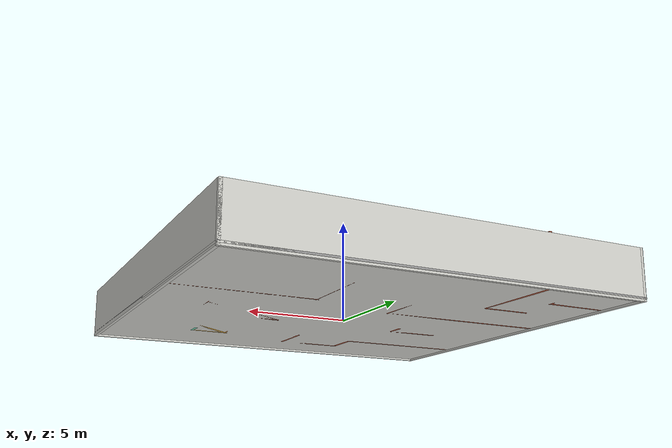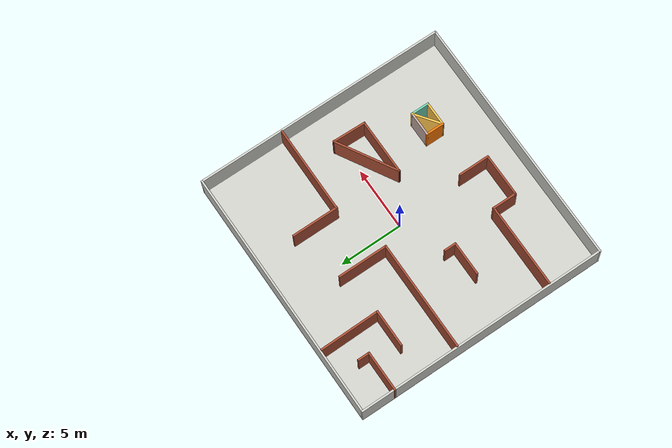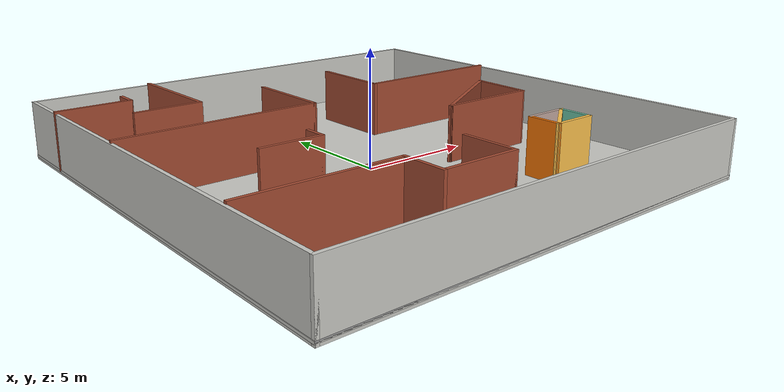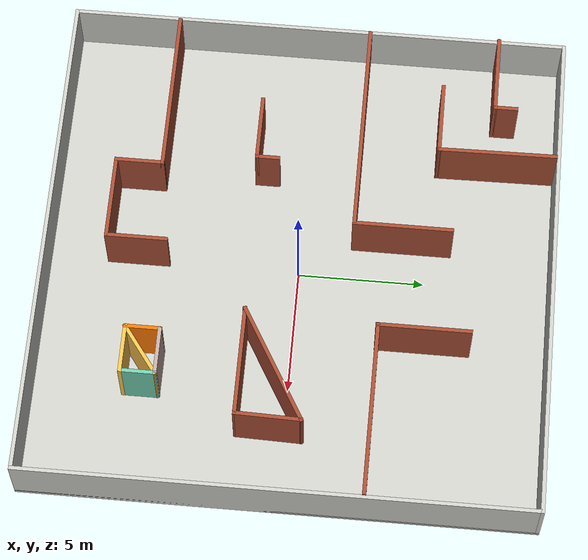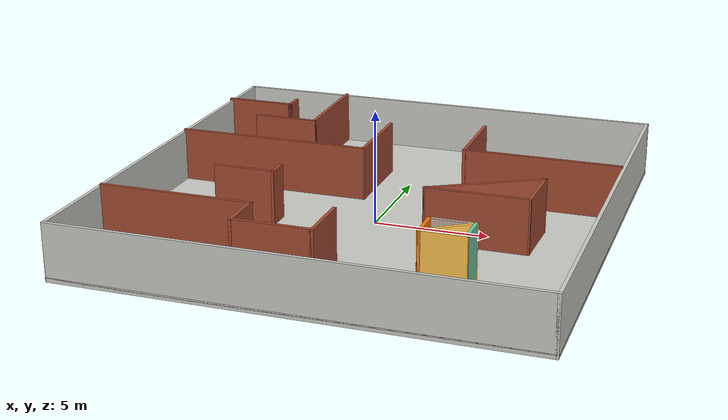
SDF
<?xml version='1.0'?>
<sdf version='1.7'>
  <model name='wall_room_1'>
    <pose>-0.01 0.005 0 0 -0 0</pose>
    <link name='Floor_1'>
      <collision name='Floor_1_Collision'>
        <geometry>
          <box>
            <size>20.17 20.14 0.1</size>
          </box>
        </geometry>
        <pose>0 0 0.05 0 -0 0</pose>
      </collision>
      <visual name='Floor_1_Visual'>
        <pose>0 0 0.05 0 -0 0</pose>
        <geometry>
          <box>
            <size>20.17 20.14 0.1</size>
          </box>
        </geometry>
        <material>
          <script>
            <uri>file://media/materials/scripts/gazebo.material</uri>
            <name>Gazebo/CeilingTiled</name>
          </script>
          <ambient>1 1 1 1</ambient>
        </material>
        <meta>
          <layer>1</layer>
        </meta>
      </visual>
      <pose>-0 -0 0.1 0 -0 0</pose>
    </link>
    <link name='Wall_1'>
      <collision name='Wall_1_Collision'>
        <geometry>
          <box>
            <size>20.15 0.15 2.5</size>
          </box>
        </geometry>
        <pose>0 0 1.25 0 -0 0</pose>
      </collision>
      <visual name='Wall_1_Visual'>
        <pose>0 0 1.25 0 -0 0</pose>
        <geometry>
          <box>
            <size>20.15 0.15 2.5</size>
          </box>
        </geometry>
        <material>
          <script>
            <uri>file://media/materials/scripts/gazebo.material</uri>
            <name>Gazebo/CeilingTiled</name>
          </script>
          <ambient>1 1 1 1</ambient>
        </material>
        <meta>
          <layer>0</layer>
        </meta>
      </visual>
      <pose>0.01 -9.995 0 0 -0 0</pose>
    </link>
    <link name='Wall_11'>
      <collision name='Wall_11_Collision'>
        <geometry>
          <box>
            <size>20.15 0.15 2.5</size>
          </box>
        </geometry>
        <pose>0 0 1.25 0 -0 0</pose>
      </collision>
      <visual name='Wall_11_Visual'>
        <pose>0 0 1.25 0 -0 0</pose>
        <geometry>
          <box>
            <size>20.15 0.15 2.5</size>
          </box>
        </geometry>
        <material>
          <script>
            <uri>file://media/materials/scripts/gazebo.material</uri>
            <name>Gazebo/CeilingTiled</name>
          </script>
          <ambient>1 1 1 1</ambient>
        </material>
        <meta>
          <layer>0</layer>
        </meta>
      </visual>
      <pose>0.01 9.995 0 0 -0 0</pose>
    </link>
    <link name='Wall_17'>
      <collision name='Wall_17_Collision'>
        <geometry>
          <box>
            <size>20.15 0.15 0.1</size>
          </box>
        </geometry>
        <pose>0 0 0.05 0 -0 0</pose>
      </collision>
      <visual name='Wall_17_Visual'>
        <pose>0 0 0.05 0 -0 0</pose>
        <geometry>
          <box>
            <size>20.15 0.15 0.1</size>
          </box>
        </geometry>
        <material>
          <script>
            <uri>file://media/materials/scripts/gazebo.material</uri>
            <name>Gazebo/Grey</name>
          </script>
          <ambient>1 1 1 1</ambient>
        </material>
        <meta>
          <layer>1</layer>
        </meta>
      </visual>
      <pose>0.01 -9.995 0.1 0 -0 0</pose>
    </link>
    <link name='Wall_18'>
      <collision name='Wall_18_Collision'>
        <geometry>
          <box>
            <size>20.14 0.15 0.1</size>
          </box>
        </geometry>
        <pose>0 0 0.05 0 -0 0</pose>
      </collision>
      <visual name='Wall_18_Visual'>
        <pose>0 0 0.05 0 -0 0</pose>
        <geometry>
          <box>
            <size>20.14 0.15 0.1</size>
          </box>
        </geometry>
        <material>
          <script>
            <uri>file://media/materials/scripts/gazebo.material</uri>
            <name>Gazebo/Grey</name>
          </script>
          <ambient>1 1 1 1</ambient>
        </material>
        <meta>
          <layer>1</layer>
        </meta>
      </visual>
      <pose>-9.99 -0 0.1 0 -0 1.5708</pose>
    </link>
    <link name='Wall_19'>
      <collision name='Wall_19_Collision'>
        <geometry>
          <box>
            <size>20.14 0.15 0.1</size>
          </box>
        </geometry>
        <pose>0 0 0.05 0 -0 0</pose>
      </collision>
      <visual name='Wall_19_Visual'>
        <pose>0 0 0.05 0 -0 0</pose>
        <geometry>
          <box>
            <size>20.14 0.15 0.1</size>
          </box>
        </geometry>
        <material>
          <script>
            <uri>file://media/materials/scripts/gazebo.material</uri>
            <name>Gazebo/Grey</name>
          </script>
          <ambient>1 1 1 1</ambient>
        </material>
        <meta>
          <layer>1</layer>
        </meta>
      </visual>
      <pose>10.01 -0 0.1 0 -0 1.5708</pose>
    </link>
    <link name='Wall_20'>
      <collision name='Wall_20_Collision'>
        <geometry>
          <box>
            <size>20.15 0.15 0.1</size>
          </box>
        </geometry>
        <pose>0 0 0.05 0 -0 0</pose>
      </collision>
      <visual name='Wall_20_Visual'>
        <pose>0 0 0.05 0 -0 0</pose>
        <geometry>
          <box>
            <size>20.15 0.15 0.1</size>
          </box>
        </geometry>
        <material>
          <script>
            <uri>file://media/materials/scripts/gazebo.material</uri>
            <name>Gazebo/Grey</name>
          </script>
          <ambient>1 1 1 1</ambient>
        </material>
        <meta>
          <layer>1</layer>
        </meta>
      </visual>
      <pose>0.01 9.995 0.1 0 -0 0</pose>
    </link>
    <link name='Wall_23'>
      <collision name='Wall_23_Collision'>
        <geometry>
          <box>
            <size>3.25 0.15 2.5</size>
          </box>
        </geometry>
        <pose>0 0 1.25 0 -0 0</pose>
      </collision>
      <visual name='Wall_23_Visual'>
        <pose>0 0 1.25 0 -0 0</pose>
        <geometry>
          <box>
            <size>3.25 0.15 2.5</size>
          </box>
        </geometry>
        <material>
          <script>
            <uri>file://media/materials/scripts/gazebo.material</uri>
            <name>Gazebo/Bricks</name>
          </script>
          <ambient>1 1 1 1</ambient>
        </material>
        <meta>
          <layer>1</layer>
        </meta>
      </visual>
      <pose>-8.46 7.345 0.1 0 -0 0</pose>
    </link>
    <link name='Wall_24'>
      <collision name='Wall_24_Collision'>
        <geometry>
          <box>
            <size>1 0.15 2.5</size>
          </box>
        </geometry>
        <pose>0 0 1.25 0 -0 0</pose>
      </collision>
      <visual name='Wall_24_Visual'>
        <pose>0 0 1.25 0 -0 0</pose>
        <geometry>
          <box>
            <size>1 0.15 2.5</size>
          </box>
        </geometry>
        <material>
          <script>
            <uri>file://media/materials/scripts/gazebo.material</uri>
            <name>Gazebo/Bricks</name>
          </script>
          <ambient>1 1 1 1</ambient>
        </material>
        <meta>
          <layer>1</layer>
        </meta>
      </visual>
      <pose>-6.91 7.77 0.1 0 -0 1.5708</pose>
    </link>
    <link name='Wall_27'>
      <collision name='Wall_27_Collision'>
        <geometry>
          <box>
            <size>4.76039 0.15 2.5</size>
          </box>
        </geometry>
        <pose>0 0 1.25 0 -0 0</pose>
      </collision>
      <visual name='Wall_27_Visual'>
        <pose>0 0 1.25 0 -0 0</pose>
        <geometry>
          <box>
            <size>4.76039 0.15 2.5</size>
          </box>
        </geometry>
        <material>
          <script>
            <uri>file://media/materials/scripts/gazebo.material</uri>
            <name>Gazebo/Bricks</name>
          </script>
          <ambient>1 1 1 1</ambient>
        </material>
        <meta>
          <layer>1</layer>
        </meta>
      </visual>
      <pose>-4.85 7.56 0.1 0 -0 -1.55778</pose>
    </link>
    <link name='Wall_28'>
      <collision name='Wall_28_Collision'>
        <geometry>
          <box>
            <size>3 0.15 2.5</size>
          </box>
        </geometry>
        <pose>0 0 1.25 0 -0 0</pose>
      </collision>
      <visual name='Wall_28_Visual'>
        <pose>0 0 1.25 0 -0 0</pose>
        <geometry>
          <box>
            <size>3 0.15 2.5</size>
          </box>
        </geometry>
        <material>
          <script>
            <uri>file://media/materials/scripts/gazebo.material</uri>
            <name>Gazebo/Bricks</name>
          </script>
          <ambient>1 1 1 1</ambient>
        </material>
        <meta>
          <layer>1</layer>
        </meta>
      </visual>
      <pose>-6.245 5.215 0.1 0 -0 3.14159</pose>
    </link>
    <link name='Wall_30'>
      <collision name='Wall_30_Collision'>
        <geometry>
          <box>
            <size>8.75 0.15 2.5</size>
          </box>
        </geometry>
        <pose>0 0 1.25 0 -0 0</pose>
      </collision>
      <visual name='Wall_30_Visual'>
        <pose>0 0 1.25 0 -0 0</pose>
        <geometry>
          <box>
            <size>8.75 0.15 2.5</size>
          </box>
        </geometry>
        <material>
          <script>
            <uri>file://media/materials/scripts/gazebo.material</uri>
            <name>Gazebo/Bricks</name>
          </script>
          <ambient>1 1 1 1</ambient>
        </material>
        <meta>
          <layer>1</layer>
        </meta>
      </visual>
      <pose>-5.63 2.085 0.1 0 -0 0</pose>
    </link>
    <link name='Wall_31'>
      <collision name='Wall_31_Collision'>
        <geometry>
          <box>
            <size>4 0.15 2.5</size>
          </box>
        </geometry>
        <pose>0 0 1.25 0 -0 0</pose>
      </collision>
      <visual name='Wall_31_Visual'>
        <pose>0 0 1.25 0 -0 0</pose>
        <geometry>
          <box>
            <size>4 0.15 2.5</size>
          </box>
        </geometry>
        <material>
          <script>
            <uri>file://media/materials/scripts/gazebo.material</uri>
            <name>Gazebo/Bricks</name>
          </script>
          <ambient>1 1 1 1</ambient>
        </material>
        <meta>
          <layer>1</layer>
        </meta>
      </visual>
      <pose>-1.27 4.01 0.1 0 -0 1.5708</pose>
    </link>
    <link name='Wall_33'>
      <collision name='Wall_33_Collision'>
        <geometry>
          <box>
            <size>7.02003 0.15 2.5</size>
          </box>
        </geometry>
        <pose>0 0 1.25 0 -0 0</pose>
      </collision>
      <visual name='Wall_33_Visual'>
        <pose>0 0 1.25 0 -0 0</pose>
        <geometry>
          <box>
            <size>7.02003 0.15 2.5</size>
          </box>
        </geometry>
        <material>
          <script>
            <uri>file://media/materials/scripts/gazebo.material</uri>
            <name>Gazebo/Bricks</name>
          </script>
          <ambient>1 1 1 1</ambient>
        </material>
        <meta>
          <layer>1</layer>
        </meta>
      </visual>
      <pose>6.445 3.325 0.1 0 -0 -0.002911</pose>
    </link>
    <link name='Wall_36'>
      <collision name='Wall_36_Collision'>
        <geometry>
          <box>
            <size>3.75 0.15 2.5</size>
          </box>
        </geometry>
        <pose>0 0 1.25 0 -0 0</pose>
      </collision>
      <visual name='Wall_36_Visual'>
        <pose>0 0 1.25 0 -0 0</pose>
        <geometry>
          <box>
            <size>3.75 0.15 2.5</size>
          </box>
        </geometry>
        <material>
          <script>
            <uri>file://media/materials/scripts/gazebo.material</uri>
            <name>Gazebo/Bricks</name>
          </script>
          <ambient>1 1 1 1</ambient>
        </material>
        <meta>
          <layer>1</layer>
        </meta>
      </visual>
      <pose>3 5.115 0.1 0 -0 1.5708</pose>
    </link>
    <link name='Wall_39'>
      <collision name='Wall_39_Collision'>
        <geometry>
          <box>
            <size>6.75 0.15 2.5</size>
          </box>
        </geometry>
        <pose>0 0 1.25 0 -0 0</pose>
      </collision>
      <visual name='Wall_39_Visual'>
        <pose>0 0 1.25 0 -0 0</pose>
        <geometry>
          <box>
            <size>6.75 0.15 2.5</size>
          </box>
        </geometry>
        <material>
          <script>
            <uri>file://media/materials/scripts/gazebo.material</uri>
            <name>Gazebo/Bricks</name>
          </script>
          <ambient>1 1 1 1</ambient>
        </material>
        <meta>
          <layer>1</layer>
        </meta>
      </visual>
      <pose>-6.57 -5.725 0.1 0 -0 0</pose>
    </link>
    <link name='Wall_40'>
      <collision name='Wall_40_Collision'>
        <geometry>
          <box>
            <size>2 0.15 2.5</size>
          </box>
        </geometry>
        <pose>0 0 1.25 0 -0 0</pose>
      </collision>
      <visual name='Wall_40_Visual'>
        <pose>0 0 1.25 0 -0 0</pose>
        <geometry>
          <box>
            <size>2 0.15 2.5</size>
          </box>
        </geometry>
        <material>
          <script>
            <uri>file://media/materials/scripts/gazebo.material</uri>
            <name>Gazebo/Bricks</name>
          </script>
          <ambient>1 1 1 1</ambient>
        </material>
        <meta>
          <layer>1</layer>
        </meta>
      </visual>
      <pose>-3.27 -6.65 0.1 0 -0 -1.5708</pose>
    </link>
    <link name='Wall_41'>
      <collision name='Wall_41_Collision'>
        <geometry>
          <box>
            <size>3.5 0.15 2.5</size>
          </box>
        </geometry>
        <pose>0 0 1.25 0 -0 0</pose>
      </collision>
      <visual name='Wall_41_Visual'>
        <pose>0 0 1.25 0 -0 0</pose>
        <geometry>
          <box>
            <size>3.5 0.15 2.5</size>
          </box>
        </geometry>
        <material>
          <script>
            <uri>file://media/materials/scripts/gazebo.material</uri>
            <name>Gazebo/Bricks</name>
          </script>
          <ambient>1 1 1 1</ambient>
        </material>
        <meta>
          <layer>1</layer>
        </meta>
      </visual>
      <pose>-1.595 -7.575 0.1 0 -0 0</pose>
    </link>
    <link name='Wall_42'>
      <collision name='Wall_42_Collision'>
        <geometry>
          <box>
            <size>2.5 0.15 2.5</size>
          </box>
        </geometry>
        <pose>0 0 1.25 0 -0 0</pose>
      </collision>
      <visual name='Wall_42_Visual'>
        <pose>0 0 1.25 0 -0 0</pose>
        <geometry>
          <box>
            <size>2.5 0.15 2.5</size>
          </box>
        </geometry>
        <material>
          <script>
            <uri>file://media/materials/scripts/gazebo.material</uri>
            <name>Gazebo/Bricks</name>
          </script>
          <ambient>1 1 1 1</ambient>
        </material>
        <meta>
          <layer>1</layer>
        </meta>
      </visual>
      <pose>0.08 -6.4 0.1 0 -0 1.5708</pose>
    </link>
    <link name='Wall_44'>
      <collision name='Wall_44_Collision'>
        <geometry>
          <box>
            <size>1.5 0.15 2.5</size>
          </box>
        </geometry>
        <pose>0 0 1.25 0 -0 0</pose>
      </collision>
      <visual name='Wall_44_Visual'>
        <pose>0 0 1.25 0 -0 0</pose>
        <geometry>
          <box>
            <size>1.5 0.15 2.5</size>
          </box>
        </geometry>
        <material>
          <script>
            <uri>file://media/materials/scripts/gazebo.material</uri>
            <name>Gazebo/Grey</name>
          </script>
          <ambient>0.996078 0.47451 0.0196078 1</ambient>
        </material>
        <meta>
          <layer>1</layer>
        </meta>
      </visual>
      <pose>3.9 -5.7 0.1 0 -0 1.5708</pose>
    </link>
    <link name='Wall_45'>
      <collision name='Wall_45_Collision'>
        <geometry>
          <box>
            <size>2 0.15 2.5</size>
          </box>
        </geometry>
        <pose>0 0 1.25 0 -0 0</pose>
      </collision>
      <visual name='Wall_45_Visual'>
        <pose>0 0 1.25 0 -0 0</pose>
        <geometry>
          <box>
            <size>2 0.15 2.5</size>
          </box>
        </geometry>
        <material>
          <script>
            <uri>file://media/materials/scripts/gazebo.material</uri>
            <name>Gazebo/Grey</name>
          </script>
          <ambient>0.760784 0.662745 0.627451 1</ambient>
        </material>
        <meta>
          <layer>1</layer>
        </meta>
      </visual>
      <pose>4.825 -5.025 0.1 0 -0 0</pose>
    </link>
    <link name='Wall_46'>
      <collision name='Wall_46_Collision'>
        <geometry>
          <box>
            <size>1.5 0.15 2.5</size>
          </box>
        </geometry>
        <pose>0 0 1.25 0 -0 0</pose>
      </collision>
      <visual name='Wall_46_Visual'>
        <pose>0 0 1.25 0 -0 0</pose>
        <geometry>
          <box>
            <size>1.5 0.15 2.5</size>
          </box>
        </geometry>
        <material>
          <script>
            <uri>file://media/materials/scripts/gazebo.material</uri>
            <name>Gazebo/Grey</name>
          </script>
          <ambient>0.435294 0.796078 0.67451 1</ambient>
        </material>
        <meta>
          <layer>1</layer>
        </meta>
      </visual>
      <pose>5.75 -5.7 0.1 0 -0 -1.5708</pose>
    </link>
    <link name='Wall_47'>
      <collision name='Wall_47_Collision'>
        <geometry>
          <box>
            <size>2 0.15 2.5</size>
          </box>
        </geometry>
        <pose>0 0 1.25 0 -0 0</pose>
      </collision>
      <visual name='Wall_47_Visual'>
        <pose>0 0 1.25 0 -0 0</pose>
        <geometry>
          <box>
            <size>2 0.15 2.5</size>
          </box>
        </geometry>
        <material>
          <script>
            <uri>file://media/materials/scripts/gazebo.material</uri>
            <name>Gazebo/Grey</name>
          </script>
          <ambient>1 0.764706 0.305882 1</ambient>
        </material>
        <meta>
          <layer>1</layer>
        </meta>
      </visual>
      <pose>4.825 -6.375 0.1 0 -0 3.14159</pose>
    </link>
    <link name='Wall_48'>
      <collision name='Wall_48_Collision'>
        <geometry>
          <box>
            <size>2.4402 0.15 2.5</size>
          </box>
        </geometry>
        <pose>0 0 1.25 0 -0 0</pose>
      </collision>
      <visual name='Wall_48_Visual'>
        <pose>0 0 1.25 0 -0 0</pose>
        <geometry>
          <box>
            <size>2.4402 0.15 2.5</size>
          </box>
        </geometry>
        <material>
          <script>
            <uri>file://media/materials/scripts/gazebo.material</uri>
            <name>Gazebo/Grey</name>
          </script>
          <ambient>1 0.764706 0.305882 1</ambient>
        </material>
        <meta>
          <layer>1</layer>
        </meta>
      </visual>
      <pose>4.825 -5.7 0.1 0 -0 0.630401</pose>
    </link>
    <link name='Wall_53'>
      <collision name='Wall_53_Collision'>
        <geometry>
          <box>
            <size>2.75 0.15 2.5</size>
          </box>
        </geometry>
        <pose>0 0 1.25 0 -0 0</pose>
      </collision>
      <visual name='Wall_53_Visual'>
        <pose>0 0 1.25 0 -0 0</pose>
        <geometry>
          <box>
            <size>2.75 0.15 2.5</size>
          </box>
        </geometry>
        <material>
          <script>
            <uri>file://media/materials/scripts/gazebo.material</uri>
            <name>Gazebo/Bricks</name>
          </script>
          <ambient>1 1 1 1</ambient>
        </material>
        <meta>
          <layer>1</layer>
        </meta>
      </visual>
      <pose>-5.17 -2.005 0.1 0 -0 0</pose>
    </link>
    <link name='Wall_54'>
      <collision name='Wall_54_Collision'>
        <geometry>
          <box>
            <size>1 0.15 2.5</size>
          </box>
        </geometry>
        <pose>0 0 1.25 0 -0 0</pose>
      </collision>
      <visual name='Wall_54_Visual'>
        <pose>0 0 1.25 0 -0 0</pose>
        <geometry>
          <box>
            <size>1 0.15 2.5</size>
          </box>
        </geometry>
        <material>
          <script>
            <uri>file://media/materials/scripts/gazebo.material</uri>
            <name>Gazebo/Bricks</name>
          </script>
          <ambient>1 1 1 1</ambient>
        </material>
        <meta>
          <layer>1</layer>
        </meta>
      </visual>
      <pose>-3.87 -1.58 0.1 0 -0 1.5708</pose>
    </link>
    <link name='Wall_57'>
      <collision name='Wall_57_Collision'>
        <geometry>
          <box>
            <size>5.25 0.15 2.5</size>
          </box>
        </geometry>
        <pose>0 0 1.25 0 -0 0</pose>
      </collision>
      <visual name='Wall_57_Visual'>
        <pose>0 0 1.25 0 -0 0</pose>
        <geometry>
          <box>
            <size>5.25 0.15 2.5</size>
          </box>
        </geometry>
        <material>
          <script>
            <uri>file://media/materials/scripts/gazebo.material</uri>
            <name>Gazebo/Bricks</name>
          </script>
          <ambient>1 1 1 1</ambient>
        </material>
        <meta>
          <layer>1</layer>
        </meta>
      </visual>
      <pose>4.97164 -0.56 0.1 0 -0 -2.61799</pose>
    </link>
    <link name='Wall_58'>
      <collision name='Wall_58_Collision'>
        <geometry>
          <box>
            <size>4.5 0.15 2.5</size>
          </box>
        </geometry>
        <pose>0 0 1.25 0 -0 0</pose>
      </collision>
      <visual name='Wall_58_Visual'>
        <pose>0 0 1.25 0 -0 0</pose>
        <geometry>
          <box>
            <size>4.5 0.15 2.5</size>
          </box>
        </geometry>
        <material>
          <script>
            <uri>file://media/materials/scripts/gazebo.material</uri>
            <name>Gazebo/Bricks</name>
          </script>
          <ambient>1 1 1 1</ambient>
        </material>
        <meta>
          <layer>1</layer>
        </meta>
      </visual>
      <pose>4.93827 -1.835 0.1 0 -0 0</pose>
    </link>
    <link name='Wall_59'>
      <collision name='Wall_59_Collision'>
        <geometry>
          <box>
            <size>2.70087 0.15 2.5</size>
          </box>
        </geometry>
        <pose>0 0 1.25 0 -0 0</pose>
      </collision>
      <visual name='Wall_59_Visual'>
        <pose>0 0 1.25 0 -0 0</pose>
        <geometry>
          <box>
            <size>2.70087 0.15 2.5</size>
          </box>
        </geometry>
        <material>
          <script>
            <uri>file://media/materials/scripts/gazebo.material</uri>
            <name>Gazebo/Bricks</name>
          </script>
          <ambient>1 1 1 1</ambient>
        </material>
        <meta>
          <layer>1</layer>
        </meta>
      </visual>
      <pose>7.14663 -0.56 0.1 0 -0 1.54463</pose>
    </link>
    <link name='Wall_7'>
      <collision name='Wall_7_Collision'>
        <geometry>
          <box>
            <size>20.14 0.15 2.5</size>
          </box>
        </geometry>
        <pose>0 0 1.25 0 -0 0</pose>
      </collision>
      <visual name='Wall_7_Visual'>
        <pose>0 0 1.25 0 -0 0</pose>
        <geometry>
          <box>
            <size>20.14 0.15 2.5</size>
          </box>
        </geometry>
        <material>
          <script>
            <uri>file://media/materials/scripts/gazebo.material</uri>
            <name>Gazebo/CeilingTiled</name>
          </script>
          <ambient>1 1 1 1</ambient>
        </material>
        <meta>
          <layer>0</layer>
        </meta>
      </visual>
      <pose>-9.99 -0 0 0 -0 1.5708</pose>
    </link>
    <link name='Wall_9'>
      <collision name='Wall_9_Collision'>
        <geometry>
          <box>
            <size>20.14 0.15 2.5</size>
          </box>
        </geometry>
        <pose>0 0 1.25 0 -0 0</pose>
      </collision>
      <visual name='Wall_9_Visual'>
        <pose>0 0 1.25 0 -0 0</pose>
        <geometry>
          <box>
            <size>20.14 0.15 2.5</size>
          </box>
        </geometry>
        <material>
          <script>
            <uri>file://media/materials/scripts/gazebo.material</uri>
            <name>Gazebo/CeilingTiled</name>
          </script>
          <ambient>1 1 1 1</ambient>
        </material>
        <meta>
          <layer>0</layer>
        </meta>
      </visual>
      <pose>10.01 -0 0 0 -0 1.5708</pose>
    </link>
    <static>1</static>
  </model>
</sdf>
